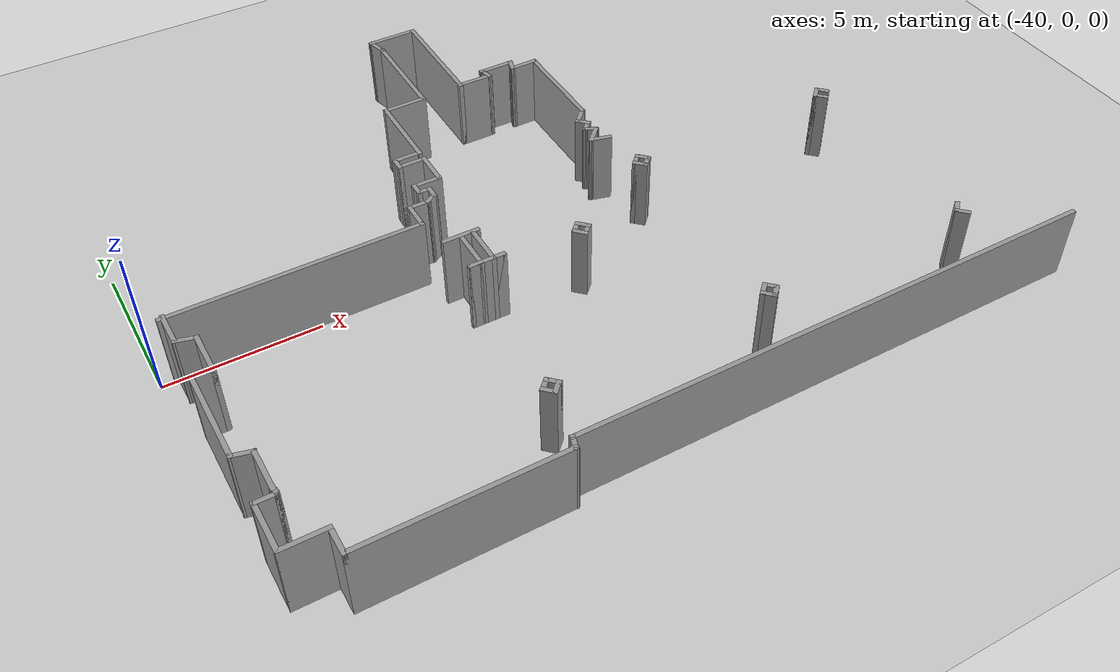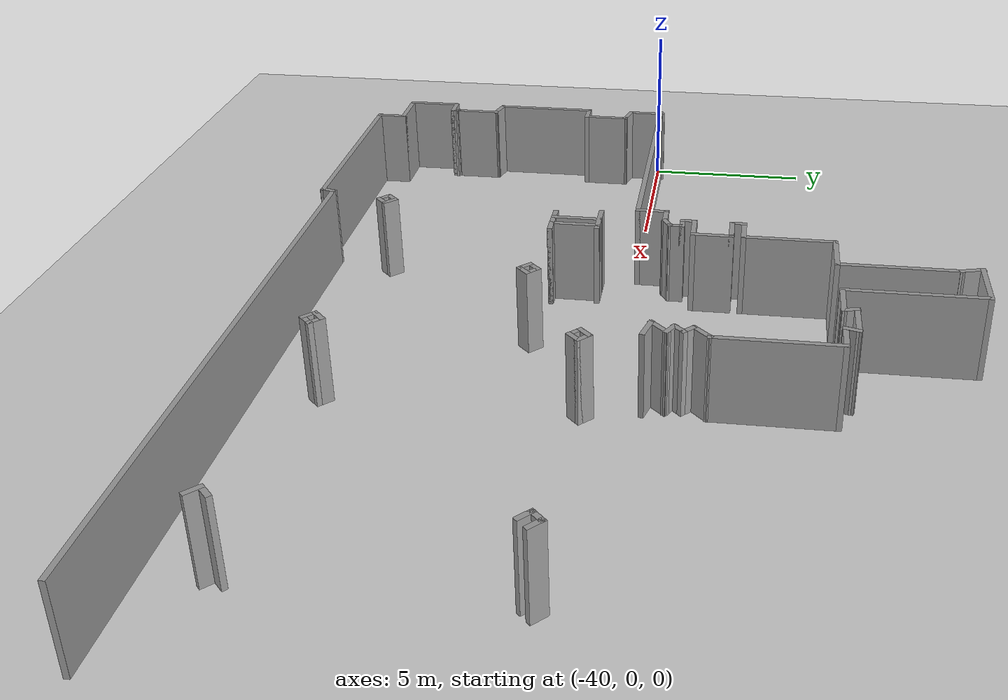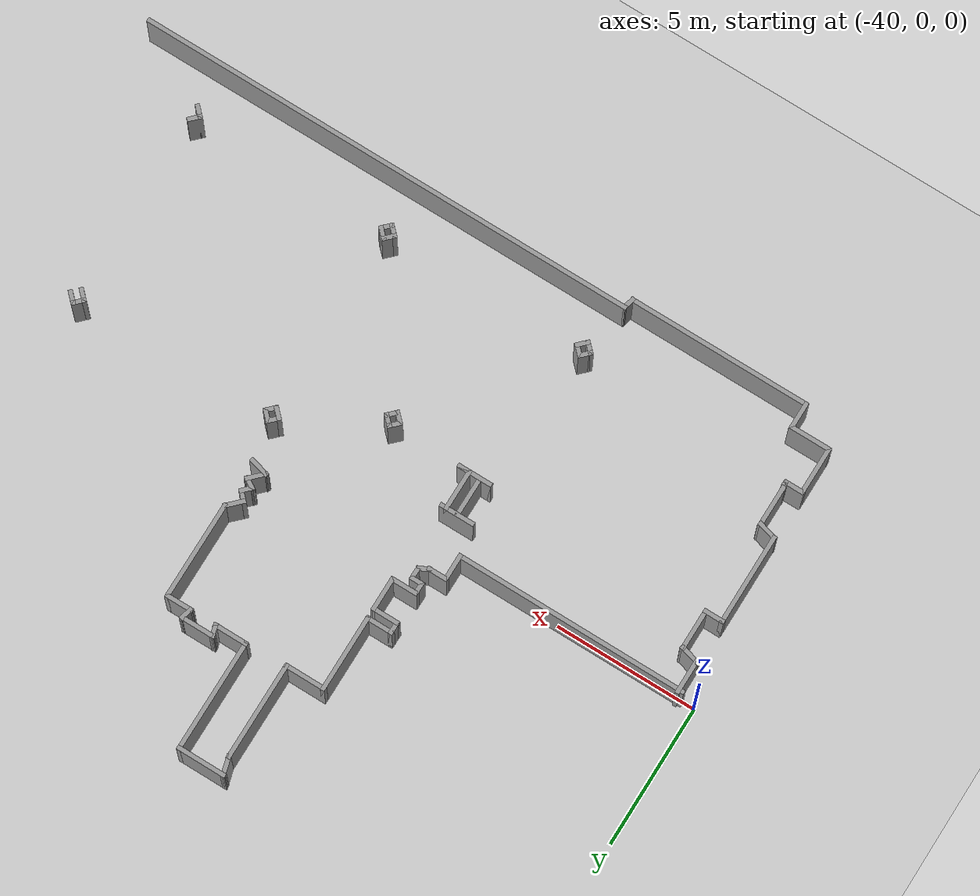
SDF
<sdf version="1.6">
 <world name="default">
  <model name="ground_plane">
   <static>1</static>
   <link name="link">
    <collision name="collision">
     <geometry><plane><normal>0 0 1</normal><size>100 100</size></plane></geometry>
     <surface><friction><ode><mu>100</mu><mu2>50</mu2></ode></friction></surface>
    </collision>
    <visual name="visual">
     <cast_shadows>0</cast_shadows>
     <geometry><plane><normal>0 0 1</normal><size>100 100</size></plane></geometry>
     <material>
      <script><uri>file://media/materials/scripts/gazebo.material</uri><name>Gazebo/Grey</name></script>
     </material>
    </visual>
   </link>
  </model>
  <model name="301_1f_2">
   <pose>0.932725 -1.08367 0 0 -0 0</pose>
   <link name="Wall_10">
    <collision name="Wall_10_Collision">
     <geometry><box><size>0.75 0.15 2.5</size></box></geometry>
     <pose>0 0 1.25 0 -0 0</pose>
    </collision>
    <visual name="Wall_10_Visual">
     <pose>0 0 1.25 0 -0 0</pose>
     <geometry><box><size>0.75 0.15 2.5</size></box></geometry>
     <material>
      <script><uri>file://media/materials/scripts/gazebo.material</uri><name>Gazebo/Grey</name></script>
      <ambient>1 1 1 1</ambient>
     </material>
     <meta><layer>0</layer></meta>
    </visual>
    <pose>-40.0631 -4.54955 0 0 -0 -0.261799</pose>
   </link>
   <link name="Wall_100">
    <collision name="Wall_100_Collision">
     <geometry><box><size>0.5 0.15 2.5</size></box></geometry>
     <pose>0 0 1.25 0 -0 0</pose>
    </collision>
    <visual name="Wall_100_Visual">
     <pose>0 0 1.25 0 -0 0</pose>
     <geometry><box><size>0.5 0.15 2.5</size></box></geometry>
     <material>
      <script><uri>file://media/materials/scripts/gazebo.material</uri><name>Gazebo/Grey</name></script>
      <ambient>1 1 1 1</ambient>
     </material>
     <meta><layer>0</layer></meta>
    </visual>
    <pose>-26.0943 7.19008 0 0 -0 1.309</pose>
   </link>
   <link name="Wall_101">
    <collision name="Wall_101_Collision">
     <geometry><box><size>1.25 0.15 2.5</size></box></geometry>
     <pose>0 0 1.25 0 -0 0</pose>
    </collision>
    <visual name="Wall_101_Visual">
     <pose>0 0 1.25 0 -0 0</pose>
     <geometry><box><size>1.25 0.15 2.5</size></box></geometry>
     <material>
      <script><uri>file://media/materials/scripts/gazebo.material</uri><name>Gazebo/Grey</name></script>
      <ambient>1 1 1 1</ambient>
     </material>
     <meta><layer>0</layer></meta>
    </visual>
    <pose>-26.599 7.35912 0 0 -0 3.14159</pose>
   </link>
   <link name="Wall_102">
    <collision name="Wall_102_Collision">
     <geometry><box><size>0.5 0.15 2.5</size></box></geometry>
     <pose>0 0 1.25 0 -0 0</pose>
    </collision>
    <visual name="Wall_102_Visual">
     <pose>0 0 1.25 0 -0 0</pose>
     <geometry><box><size>0.5 0.15 2.5</size></box></geometry>
     <material>
      <script><uri>file://media/materials/scripts/gazebo.material</uri><name>Gazebo/Grey</name></script>
      <ambient>1 1 1 1</ambient>
     </material>
     <meta><layer>0</layer></meta>
    </visual>
    <pose>-27.1037 7.19008 0 0 -0 -1.309</pose>
   </link>
   <link name="Wall_103">
    <collision name="Wall_103_Collision">
     <geometry><box><size>1.25 0.15 2.5</size></box></geometry>
     <pose>0 0 1.25 0 -0 0</pose>
    </collision>
    <visual name="Wall_103_Visual">
     <pose>0 0 1.25 0 -0 0</pose>
     <geometry><box><size>1.25 0.15 2.5</size></box></geometry>
     <material>
      <script><uri>file://media/materials/scripts/gazebo.material</uri><name>Gazebo/Grey</name></script>
      <ambient>1 1 1 1</ambient>
     </material>
     <meta><layer>0</layer></meta>
    </visual>
    <pose>-27.6084 7.02104 0 0 -0 3.14159</pose>
   </link>
   <link name="Wall_104">
    <collision name="Wall_104_Collision">
     <geometry><box><size>4 0.15 2.5</size></box></geometry>
     <pose>0 0 1.25 0 -0 0</pose>
    </collision>
    <visual name="Wall_104_Visual">
     <pose>0 0 1.25 0 -0 0</pose>
     <geometry><box><size>4 0.15 2.5</size></box></geometry>
     <material>
      <script><uri>file://media/materials/scripts/gazebo.material</uri><name>Gazebo/Grey</name></script>
      <ambient>1 1 1 1</ambient>
     </material>
     <meta><layer>0</layer></meta>
    </visual>
    <pose>-28.1584 8.94604 0 0 -0 1.5708</pose>
   </link>
   <link name="Wall_105">
    <collision name="Wall_105_Collision">
     <geometry><box><size>1.75 0.15 2.5</size></box></geometry>
     <pose>0 0 1.25 0 -0 0</pose>
    </collision>
    <visual name="Wall_105_Visual">
     <pose>0 0 1.25 0 -0 0</pose>
     <geometry><box><size>1.75 0.15 2.5</size></box></geometry>
     <material>
      <script><uri>file://media/materials/scripts/gazebo.material</uri><name>Gazebo/Grey</name></script>
      <ambient>1 1 1 1</ambient>
     </material>
     <meta><layer>0</layer></meta>
    </visual>
    <pose>-28.9584 10.871 0 0 -0 3.14159</pose>
   </link>
   <link name="Wall_106">
    <collision name="Wall_106_Collision">
     <geometry><box><size>0.75 0.15 2.5</size></box></geometry>
     <pose>0 0 1.25 0 -0 0</pose>
    </collision>
    <visual name="Wall_106_Visual">
     <pose>0 0 1.25 0 -0 0</pose>
     <geometry><box><size>0.75 0.15 2.5</size></box></geometry>
     <material>
      <script><uri>file://media/materials/scripts/gazebo.material</uri><name>Gazebo/Grey</name></script>
      <ambient>1 1 1 1</ambient>
     </material>
     <meta><layer>0</layer></meta>
    </visual>
    <pose>-29.6807 10.5813 0 0 -0 -1.309</pose>
   </link>
   <link name="Wall_107">
    <collision name="Wall_107_Collision">
     <geometry><box><size>3.5 0.15 2.5</size></box></geometry>
     <pose>0 0 1.25 0 -0 0</pose>
    </collision>
    <visual name="Wall_107_Visual">
     <pose>0 0 1.25 0 -0 0</pose>
     <geometry><box><size>3.5 0.15 2.5</size></box></geometry>
     <material>
      <script><uri>file://media/materials/scripts/gazebo.material</uri><name>Gazebo/Grey</name></script>
      <ambient>1 1 1 1</ambient>
     </material>
     <meta><layer>0</layer></meta>
    </visual>
    <pose>-29.6031 8.61649 0 0 -0 -1.5708</pose>
   </link>
   <link name="Wall_108">
    <collision name="Wall_108_Collision">
     <geometry><box><size>1.5 0.15 2.5</size></box></geometry>
     <pose>0 0 1.25 0 -0 0</pose>
    </collision>
    <visual name="Wall_108_Visual">
     <pose>0 0 1.25 0 -0 0</pose>
     <geometry><box><size>1.5 0.15 2.5</size></box></geometry>
     <material>
      <script><uri>file://media/materials/scripts/gazebo.material</uri><name>Gazebo/Grey</name></script>
      <ambient>1 1 1 1</ambient>
     </material>
     <meta><layer>0</layer></meta>
    </visual>
    <pose>-30.2781 6.94149 0 0 -0 3.14159</pose>
   </link>
   <link name="Wall_109">
    <collision name="Wall_109_Collision">
     <geometry><box><size>2.75 0.15 2.5</size></box></geometry>
     <pose>0 0 1.25 0 -0 0</pose>
    </collision>
    <visual name="Wall_109_Visual">
     <pose>0 0 1.25 0 -0 0</pose>
     <geometry><box><size>2.75 0.15 2.5</size></box></geometry>
     <material>
      <script><uri>file://media/materials/scripts/gazebo.material</uri><name>Gazebo/Grey</name></script>
      <ambient>1 1 1 1</ambient>
     </material>
     <meta><layer>0</layer></meta>
    </visual>
    <pose>-30.9531 5.64149 0 0 -0 -1.5708</pose>
   </link>
   <link name="Wall_11">
    <collision name="Wall_11_Collision">
     <geometry><box><size>1.5 0.15 2.5</size></box></geometry>
     <pose>0 0 1.25 0 -0 0</pose>
    </collision>
    <visual name="Wall_11_Visual">
     <pose>0 0 1.25 0 -0 0</pose>
     <geometry><box><size>1.5 0.15 2.5</size></box></geometry>
     <material>
      <script><uri>file://media/materials/scripts/gazebo.material</uri><name>Gazebo/Grey</name></script>
      <ambient>1 1 1 1</ambient>
     </material>
     <meta><layer>0</layer></meta>
    </visual>
    <pose>-39.7734 -5.30219 0 0 -0 -1.5708</pose>
   </link>
   <link name="Wall_110">
    <collision name="Wall_110_Collision">
     <geometry><box><size>1 0.15 2.5</size></box></geometry>
     <pose>0 0 1.25 0 -0 0</pose>
    </collision>
    <visual name="Wall_110_Visual">
     <pose>0 0 1.25 0 -0 0</pose>
     <geometry><box><size>1 0.15 2.5</size></box></geometry>
     <material>
      <script><uri>file://media/materials/scripts/gazebo.material</uri><name>Gazebo/Grey</name></script>
      <ambient>1 1 1 1</ambient>
     </material>
     <meta><layer>0</layer></meta>
    </visual>
    <pose>-31.3781 4.34149 0 0 -0 3.14159</pose>
   </link>
   <link name="Wall_111">
    <collision name="Wall_111_Collision">
     <geometry><box><size>0.5 0.15 2.5</size></box></geometry>
     <pose>0 0 1.25 0 -0 0</pose>
    </collision>
    <visual name="Wall_111_Visual">
     <pose>0 0 1.25 0 -0 0</pose>
     <geometry><box><size>0.5 0.15 2.5</size></box></geometry>
     <material>
      <script><uri>file://media/materials/scripts/gazebo.material</uri><name>Gazebo/Grey</name></script>
      <ambient>1 1 1 1</ambient>
     </material>
     <meta><layer>0</layer></meta>
    </visual>
    <pose>-31.8031 4.16649 0 0 -0 -1.5708</pose>
   </link>
   <link name="Wall_112">
    <collision name="Wall_112_Collision">
     <geometry><box><size>1 0.15 2.5</size></box></geometry>
     <pose>0 0 1.25 0 -0 0</pose>
    </collision>
    <visual name="Wall_112_Visual">
     <pose>0 0 1.25 0 -0 0</pose>
     <geometry><box><size>1 0.15 2.5</size></box></geometry>
     <material>
      <script><uri>file://media/materials/scripts/gazebo.material</uri><name>Gazebo/Grey</name></script>
      <ambient>1 1 1 1</ambient>
     </material>
     <meta><layer>0</layer></meta>
    </visual>
    <pose>-31.3781 3.99149 0 0 -0 0</pose>
   </link>
   <link name="Wall_113">
    <collision name="Wall_113_Collision">
     <geometry><box><size>1.25 0.15 2.5</size></box></geometry>
     <pose>0 0 1.25 0 -0 0</pose>
    </collision>
    <visual name="Wall_113_Visual">
     <pose>0 0 1.25 0 -0 0</pose>
     <geometry><box><size>1.25 0.15 2.5</size></box></geometry>
     <material>
      <script><uri>file://media/materials/scripts/gazebo.material</uri><name>Gazebo/Grey</name></script>
      <ambient>1 1 1 1</ambient>
     </material>
     <meta><layer>0</layer></meta>
    </visual>
    <pose>-30.9531 3.44149 0 0 -0 -1.5708</pose>
   </link>
   <link name="Wall_114">
    <collision name="Wall_114_Collision">
     <geometry><box><size>1 0.15 2.5</size></box></geometry>
     <pose>0 0 1.25 0 -0 0</pose>
    </collision>
    <visual name="Wall_114_Visual">
     <pose>0 0 1.25 0 -0 0</pose>
     <geometry><box><size>1 0.15 2.5</size></box></geometry>
     <material>
      <script><uri>file://media/materials/scripts/gazebo.material</uri><name>Gazebo/Grey</name></script>
      <ambient>1 1 1 1</ambient>
     </material>
     <meta><layer>0</layer></meta>
    </visual>
    <pose>-31.3781 2.89149 0 0 -0 3.14159</pose>
   </link>
   <link name="Wall_115">
    <collision name="Wall_115_Collision">
     <geometry><box><size>0.5 0.15 2.5</size></box></geometry>
     <pose>0 0 1.25 0 -0 0</pose>
    </collision>
    <visual name="Wall_115_Visual">
     <pose>0 0 1.25 0 -0 0</pose>
     <geometry><box><size>0.5 0.15 2.5</size></box></geometry>
     <material>
      <script><uri>file://media/materials/scripts/gazebo.material</uri><name>Gazebo/Grey</name></script>
      <ambient>1 1 1 1</ambient>
     </material>
     <meta><layer>0</layer></meta>
    </visual>
    <pose>-31.8031 2.71649 0 0 -0 -1.5708</pose>
   </link>
   <link name="Wall_116">
    <collision name="Wall_116_Collision">
     <geometry><box><size>0.5 0.15 2.5</size></box></geometry>
     <pose>0 0 1.25 0 -0 0</pose>
    </collision>
    <visual name="Wall_116_Visual">
     <pose>0 0 1.25 0 -0 0</pose>
     <geometry><box><size>0.5 0.15 2.5</size></box></geometry>
     <material>
      <script><uri>file://media/materials/scripts/gazebo.material</uri><name>Gazebo/Grey</name></script>
      <ambient>1 1 1 1</ambient>
     </material>
     <meta><layer>0</layer></meta>
    </visual>
    <pose>-31.6281 2.54149 0 0 -0 0</pose>
   </link>
   <link name="Wall_117">
    <collision name="Wall_117_Collision">
     <geometry><box><size>0.5 0.15 2.5</size></box></geometry>
     <pose>0 0 1.25 0 -0 0</pose>
    </collision>
    <visual name="Wall_117_Visual">
     <pose>0 0 1.25 0 -0 0</pose>
     <geometry><box><size>0.5 0.15 2.5</size></box></geometry>
     <material>
      <script><uri>file://media/materials/scripts/gazebo.material</uri><name>Gazebo/Grey</name></script>
      <ambient>1 1 1 1</ambient>
     </material>
     <meta><layer>0</layer></meta>
    </visual>
    <pose>-31.4531 2.36649 0 0 -0 -1.5708</pose>
   </link>
   <link name="Wall_118">
    <collision name="Wall_118_Collision">
     <geometry><box><size>0.5 0.15 2.5</size></box></geometry>
     <pose>0 0 1.25 0 -0 0</pose>
    </collision>
    <visual name="Wall_118_Visual">
     <pose>0 0 1.25 0 -0 0</pose>
     <geometry><box><size>0.5 0.15 2.5</size></box></geometry>
     <material>
      <script><uri>file://media/materials/scripts/gazebo.material</uri><name>Gazebo/Grey</name></script>
      <ambient>1 1 1 1</ambient>
     </material>
     <meta><layer>0</layer></meta>
    </visual>
    <pose>-31.6047 2.10399 0 0 -0 -2.61799</pose>
   </link>
   <link name="Wall_119">
    <collision name="Wall_119_Collision">
     <geometry><box><size>0.75 0.15 2.5</size></box></geometry>
     <pose>0 0 1.25 0 -0 0</pose>
    </collision>
    <visual name="Wall_119_Visual">
     <pose>0 0 1.25 0 -0 0</pose>
     <geometry><box><size>0.75 0.15 2.5</size></box></geometry>
     <material>
      <script><uri>file://media/materials/scripts/gazebo.material</uri><name>Gazebo/Grey</name></script>
      <ambient>1 1 1 1</ambient>
     </material>
     <meta><layer>0</layer></meta>
    </visual>
    <pose>-32.0562 2.01649 0 0 -0 3.14159</pose>
   </link>
   <link name="Wall_12">
    <collision name="Wall_12_Collision">
     <geometry><box><size>0.25 0.15 2.5</size></box></geometry>
     <pose>0 0 1.25 0 -0 0</pose>
    </collision>
    <visual name="Wall_12_Visual">
     <pose>0 0 1.25 0 -0 0</pose>
     <geometry><box><size>0.25 0.15 2.5</size></box></geometry>
     <material>
      <script><uri>file://media/materials/scripts/gazebo.material</uri><name>Gazebo/Grey</name></script>
      <ambient>1 1 1 1</ambient>
     </material>
     <meta><layer>0</layer></meta>
    </visual>
    <pose>-39.7604 -6.02549 0 0 -0 -1.309</pose>
   </link>
   <link name="Wall_122">
    <collision name="Wall_122_Collision">
     <geometry><box><size>1 0.15 2.5</size></box></geometry>
     <pose>0 0 1.25 0 -0 0</pose>
    </collision>
    <visual name="Wall_122_Visual">
     <pose>0 0 1.25 0 -0 0</pose>
     <geometry><box><size>1 0.15 2.5</size></box></geometry>
     <material>
      <script><uri>file://media/materials/scripts/gazebo.material</uri><name>Gazebo/Grey</name></script>
      <ambient>1 1 1 1</ambient>
     </material>
     <meta><layer>0</layer></meta>
    </visual>
    <pose>-32.3562 1.59149 0 0 -0 -1.5708</pose>
   </link>
   <link name="Wall_123">
    <collision name="Wall_123_Collision">
     <geometry><box><size>8.25 0.15 2.5</size></box></geometry>
     <pose>0 0 1.25 0 -0 0</pose>
    </collision>
    <visual name="Wall_123_Visual">
     <pose>0 0 1.25 0 -0 0</pose>
     <geometry><box><size>8.25 0.15 2.5</size></box></geometry>
     <material>
      <script><uri>file://media/materials/scripts/gazebo.material</uri><name>Gazebo/Grey</name></script>
      <ambient>1 1 1 1</ambient>
     </material>
     <meta><layer>0</layer></meta>
    </visual>
    <pose>-36.4062 1.16649 0 0 -0 3.14159</pose>
   </link>
   <link name="Wall_13">
    <collision name="Wall_13_Collision">
     <geometry><box><size>0.25 0.15 2.5</size></box></geometry>
     <pose>0 0 1.25 0 -0 0</pose>
    </collision>
    <visual name="Wall_13_Visual">
     <pose>0 0 1.25 0 -0 0</pose>
     <geometry><box><size>0.25 0.15 2.5</size></box></geometry>
     <material>
      <script><uri>file://media/materials/scripts/gazebo.material</uri><name>Gazebo/Grey</name></script>
      <ambient>1 1 1 1</ambient>
     </material>
     <meta><layer>0</layer></meta>
    </visual>
    <pose>-39.7475 -6.12379 0 0 -0 -1.5708</pose>
   </link>
   <link name="Wall_14">
    <collision name="Wall_14_Collision">
     <geometry><box><size>0.75 0.15 2.5</size></box></geometry>
     <pose>0 0 1.25 0 -0 0</pose>
    </collision>
    <visual name="Wall_14_Visual">
     <pose>0 0 1.25 0 -0 0</pose>
     <geometry><box><size>0.75 0.15 2.5</size></box></geometry>
     <material>
      <script><uri>file://media/materials/scripts/gazebo.material</uri><name>Gazebo/Grey</name></script>
      <ambient>1 1 1 1</ambient>
     </material>
     <meta><layer>0</layer></meta>
    </visual>
    <pose>-40.0475 -6.17379 0 0 -0 3.14159</pose>
   </link>
   <link name="Wall_15">
    <collision name="Wall_15_Collision">
     <geometry><box><size>1.75 0.15 2.5</size></box></geometry>
     <pose>0 0 1.25 0 -0 0</pose>
    </collision>
    <visual name="Wall_15_Visual">
     <pose>0 0 1.25 0 -0 0</pose>
     <geometry><box><size>1.75 0.15 2.5</size></box></geometry>
     <material>
      <script><uri>file://media/materials/scripts/gazebo.material</uri><name>Gazebo/Grey</name></script>
      <ambient>1 1 1 1</ambient>
     </material>
     <meta><layer>0</layer></meta>
    </visual>
    <pose>-40.3475 -6.97379 0 0 -0 -1.5708</pose>
   </link>
   <link name="Wall_16">
    <collision name="Wall_16_Collision">
     <geometry><box><size>1.5 0.15 2.5</size></box></geometry>
     <pose>0 0 1.25 0 -0 0</pose>
    </collision>
    <visual name="Wall_16_Visual">
     <pose>0 0 1.25 0 -0 0</pose>
     <geometry><box><size>1.5 0.15 2.5</size></box></geometry>
     <material>
      <script><uri>file://media/materials/scripts/gazebo.material</uri><name>Gazebo/Grey</name></script>
      <ambient>1 1 1 1</ambient>
     </material>
     <meta><layer>0</layer></meta>
    </visual>
    <pose>-39.6725 -7.77379 0 0 -0 0</pose>
   </link>
   <link name="Wall_17">
    <collision name="Wall_17_Collision">
     <geometry><box><size>1 0.15 2.5</size></box></geometry>
     <pose>0 0 1.25 0 -0 0</pose>
    </collision>
    <visual name="Wall_17_Visual">
     <pose>0 0 1.25 0 -0 0</pose>
     <geometry><box><size>1 0.15 2.5</size></box></geometry>
     <material>
      <script><uri>file://media/materials/scripts/gazebo.material</uri><name>Gazebo/Grey</name></script>
      <ambient>1 1 1 1</ambient>
     </material>
     <meta><layer>0</layer></meta>
    </visual>
    <pose>-38.9975 -8.19879 0 0 -0 -1.5708</pose>
   </link>
   <link name="Wall_179">
    <collision name="Wall_179_Collision">
     <geometry><box><size>0.5 0.15 2.5</size></box></geometry>
     <pose>0 0 1.25 0 -0 0</pose>
    </collision>
    <visual name="Wall_179_Visual">
     <pose>0 0 1.25 0 -0 0</pose>
     <geometry><box><size>0.5 0.15 2.5</size></box></geometry>
     <material>
      <script><uri>file://media/materials/scripts/gazebo.material</uri><name>Gazebo/Grey</name></script>
      <ambient>1 1 1 1</ambient>
     </material>
     <meta><layer>0</layer></meta>
    </visual>
    <pose>-17.9208 0.580185 0 0 -0 0.785398</pose>
   </link>
   <link name="Wall_18">
    <collision name="Wall_18_Collision">
     <geometry><box><size>6.5 0.15 2.5</size></box></geometry>
     <pose>0 0 1.25 0 -0 0</pose>
    </collision>
    <visual name="Wall_18_Visual">
     <pose>0 0 1.25 0 -0 0</pose>
     <geometry><box><size>6.5 0.15 2.5</size></box></geometry>
     <material>
      <script><uri>file://media/materials/scripts/gazebo.material</uri><name>Gazebo/Grey</name></script>
      <ambient>1 1 1 1</ambient>
     </material>
     <meta><layer>0</layer></meta>
    </visual>
    <pose>-35.8225 -8.62379 0 0 -0 0</pose>
   </link>
   <link name="Wall_180">
    <collision name="Wall_180_Collision">
     <geometry><box><size>0.5 0.15 2.5</size></box></geometry>
     <pose>0 0 1.25 0 -0 0</pose>
    </collision>
    <visual name="Wall_180_Visual">
     <pose>0 0 1.25 0 -0 0</pose>
     <geometry><box><size>0.5 0.15 2.5</size></box></geometry>
     <material>
      <script><uri>file://media/materials/scripts/gazebo.material</uri><name>Gazebo/Grey</name></script>
      <ambient>1 1 1 1</ambient>
     </material>
     <meta><layer>0</layer></meta>
    </visual>
    <pose>-17.6733 0.580185 0 0 -0 -0.785398</pose>
   </link>
   <link name="Wall_182">
    <collision name="Wall_182_Collision">
     <geometry><box><size>0.5 0.15 2.5</size></box></geometry>
     <pose>0 0 1.25 0 -0 0</pose>
    </collision>
    <visual name="Wall_182_Visual">
     <pose>0 0 1.25 0 -0 0</pose>
     <geometry><box><size>0.5 0.15 2.5</size></box></geometry>
     <material>
      <script><uri>file://media/materials/scripts/gazebo.material</uri><name>Gazebo/Grey</name></script>
      <ambient>1 1 1 1</ambient>
     </material>
     <meta><layer>0</layer></meta>
    </visual>
    <pose>-17.9208 0.332697 0 0 -0 2.35619</pose>
   </link>
   <link name="Wall_184">
    <collision name="Wall_184_Collision">
     <geometry><box><size>0.5 0.15 2.5</size></box></geometry>
     <pose>0 0 1.25 0 -0 0</pose>
    </collision>
    <visual name="Wall_184_Visual">
     <pose>0 0 1.25 0 -0 0</pose>
     <geometry><box><size>0.5 0.15 2.5</size></box></geometry>
     <material>
      <script><uri>file://media/materials/scripts/gazebo.material</uri><name>Gazebo/Grey</name></script>
      <ambient>1 1 1 1</ambient>
     </material>
     <meta><layer>0</layer></meta>
    </visual>
    <pose>-17.8535 -6.35033 0 0 -0 0.785398</pose>
   </link>
   <link name="Wall_187">
    <collision name="Wall_187_Collision">
     <geometry><box><size>0.5 0.15 2.5</size></box></geometry>
     <pose>0 0 1.25 0 -0 0</pose>
    </collision>
    <visual name="Wall_187_Visual">
     <pose>0 0 1.25 0 -0 0</pose>
     <geometry><box><size>0.5 0.15 2.5</size></box></geometry>
     <material>
      <script><uri>file://media/materials/scripts/gazebo.material</uri><name>Gazebo/Grey</name></script>
      <ambient>1 1 1 1</ambient>
     </material>
     <meta><layer>0</layer></meta>
    </visual>
    <pose>-17.8535 -6.59782 0 0 -0 2.35619</pose>
   </link>
   <link name="Wall_189">
    <collision name="Wall_189_Collision">
     <geometry><box><size>0.5 0.15 2.5</size></box></geometry>
     <pose>0 0 1.25 0 -0 0</pose>
    </collision>
    <visual name="Wall_189_Visual">
     <pose>0 0 1.25 0 -0 0</pose>
     <geometry><box><size>0.5 0.15 2.5</size></box></geometry>
     <material>
      <script><uri>file://media/materials/scripts/gazebo.material</uri><name>Gazebo/Grey</name></script>
      <ambient>1 1 1 1</ambient>
     </material>
     <meta><layer>0</layer></meta>
    </visual>
    <pose>-25.1204 0.557756 0 0 -0 0.785398</pose>
   </link>
   <link name="Wall_19">
    <collision name="Wall_19_Collision">
     <geometry><box><size>0.5 0.15 2.5</size></box></geometry>
     <pose>0 0 1.25 0 -0 0</pose>
    </collision>
    <visual name="Wall_19_Visual">
     <pose>0 0 1.25 0 -0 0</pose>
     <geometry><box><size>0.5 0.15 2.5</size></box></geometry>
     <material>
      <script><uri>file://media/materials/scripts/gazebo.material</uri><name>Gazebo/Grey</name></script>
      <ambient>1 1 1 1</ambient>
     </material>
     <meta><layer>0</layer></meta>
    </visual>
    <pose>-32.6022 -8.45475 0 0 -0 1.309</pose>
   </link>
   <link name="Wall_190">
    <collision name="Wall_190_Collision">
     <geometry><box><size>0.5 0.15 2.5</size></box></geometry>
     <pose>0 0 1.25 0 -0 0</pose>
    </collision>
    <visual name="Wall_190_Visual">
     <pose>0 0 1.25 0 -0 0</pose>
     <geometry><box><size>0.5 0.15 2.5</size></box></geometry>
     <material>
      <script><uri>file://media/materials/scripts/gazebo.material</uri><name>Gazebo/Grey</name></script>
      <ambient>1 1 1 1</ambient>
     </material>
     <meta><layer>0</layer></meta>
    </visual>
    <pose>-24.8729 0.557756 0 0 -0 -0.785398</pose>
   </link>
   <link name="Wall_191">
    <collision name="Wall_191_Collision">
     <geometry><box><size>0.5 0.15 2.5</size></box></geometry>
     <pose>0 0 1.25 0 -0 0</pose>
    </collision>
    <visual name="Wall_191_Visual">
     <pose>0 0 1.25 0 -0 0</pose>
     <geometry><box><size>0.5 0.15 2.5</size></box></geometry>
     <material>
      <script><uri>file://media/materials/scripts/gazebo.material</uri><name>Gazebo/Grey</name></script>
      <ambient>1 1 1 1</ambient>
     </material>
     <meta><layer>0</layer></meta>
    </visual>
    <pose>-24.8729 0.310269 0 0 -0 -2.35619</pose>
   </link>
   <link name="Wall_192">
    <collision name="Wall_192_Collision">
     <geometry><box><size>0.5 0.15 2.5</size></box></geometry>
     <pose>0 0 1.25 0 -0 0</pose>
    </collision>
    <visual name="Wall_192_Visual">
     <pose>0 0 1.25 0 -0 0</pose>
     <geometry><box><size>0.5 0.15 2.5</size></box></geometry>
     <material>
      <script><uri>file://media/materials/scripts/gazebo.material</uri><name>Gazebo/Grey</name></script>
      <ambient>1 1 1 1</ambient>
     </material>
     <meta><layer>0</layer></meta>
    </visual>
    <pose>-25.1204 0.310269 0 0 -0 2.35619</pose>
   </link>
   <link name="Wall_194">
    <collision name="Wall_194_Collision">
     <geometry><box><size>0.5 0.15 2.5</size></box></geometry>
     <pose>0 0 1.25 0 -0 0</pose>
    </collision>
    <visual name="Wall_194_Visual">
     <pose>0 0 1.25 0 -0 0</pose>
     <geometry><box><size>0.5 0.15 2.5</size></box></geometry>
     <material>
      <script><uri>file://media/materials/scripts/gazebo.material</uri><name>Gazebo/Grey</name></script>
      <ambient>1 1 1 1</ambient>
     </material>
     <meta><layer>0</layer></meta>
    </visual>
    <pose>-25.098 -6.30548 0 0 -0 0.785398</pose>
   </link>
   <link name="Wall_195">
    <collision name="Wall_195_Collision">
     <geometry><box><size>0.5 0.15 2.5</size></box></geometry>
     <pose>0 0 1.25 0 -0 0</pose>
    </collision>
    <visual name="Wall_195_Visual">
     <pose>0 0 1.25 0 -0 0</pose>
     <geometry><box><size>0.5 0.15 2.5</size></box></geometry>
     <material>
      <script><uri>file://media/materials/scripts/gazebo.material</uri><name>Gazebo/Grey</name></script>
      <ambient>1 1 1 1</ambient>
     </material>
     <meta><layer>0</layer></meta>
    </visual>
    <pose>-24.8505 -6.30548 0 0 -0 -0.785398</pose>
   </link>
   <link name="Wall_196">
    <collision name="Wall_196_Collision">
     <geometry><box><size>0.5 0.15 2.5</size></box></geometry>
     <pose>0 0 1.25 0 -0 0</pose>
    </collision>
    <visual name="Wall_196_Visual">
     <pose>0 0 1.25 0 -0 0</pose>
     <geometry><box><size>0.5 0.15 2.5</size></box></geometry>
     <material>
      <script><uri>file://media/materials/scripts/gazebo.material</uri><name>Gazebo/Grey</name></script>
      <ambient>1 1 1 1</ambient>
     </material>
     <meta><layer>0</layer></meta>
    </visual>
    <pose>-24.8505 -6.55296 0 0 -0 -2.35619</pose>
   </link>
   <link name="Wall_197">
    <collision name="Wall_197_Collision">
     <geometry><box><size>0.5 0.15 2.5</size></box></geometry>
     <pose>0 0 1.25 0 -0 0</pose>
    </collision>
    <visual name="Wall_197_Visual">
     <pose>0 0 1.25 0 -0 0</pose>
     <geometry><box><size>0.5 0.15 2.5</size></box></geometry>
     <material>
      <script><uri>file://media/materials/scripts/gazebo.material</uri><name>Gazebo/Grey</name></script>
      <ambient>1 1 1 1</ambient>
     </material>
     <meta><layer>0</layer></meta>
    </visual>
    <pose>-25.098 -6.55296 0 0 -0 2.35619</pose>
   </link>
   <link name="Wall_199">
    <collision name="Wall_199_Collision">
     <geometry><box><size>0.5 0.15 2.5</size></box></geometry>
     <pose>0 0 1.25 0 -0 0</pose>
    </collision>
    <visual name="Wall_199_Visual">
     <pose>0 0 1.25 0 -0 0</pose>
     <geometry><box><size>0.5 0.15 2.5</size></box></geometry>
     <material>
      <script><uri>file://media/materials/scripts/gazebo.material</uri><name>Gazebo/Grey</name></script>
      <ambient>1 1 1 1</ambient>
     </material>
     <meta><layer>0</layer></meta>
    </visual>
    <pose>-32.2977 -6.35033 0 0 -0 0.785398</pose>
   </link>
   <link name="Wall_200">
    <collision name="Wall_200_Collision">
     <geometry><box><size>0.5 0.15 2.5</size></box></geometry>
     <pose>0 0 1.25 0 -0 0</pose>
    </collision>
    <visual name="Wall_200_Visual">
     <pose>0 0 1.25 0 -0 0</pose>
     <geometry><box><size>0.5 0.15 2.5</size></box></geometry>
     <material>
      <script><uri>file://media/materials/scripts/gazebo.material</uri><name>Gazebo/Grey</name></script>
      <ambient>1 1 1 1</ambient>
     </material>
     <meta><layer>0</layer></meta>
    </visual>
    <pose>-32.0502 -6.35033 0 0 -0 -0.785398</pose>
   </link>
   <link name="Wall_201">
    <collision name="Wall_201_Collision">
     <geometry><box><size>0.5 0.15 2.5</size></box></geometry>
     <pose>0 0 1.25 0 -0 0</pose>
    </collision>
    <visual name="Wall_201_Visual">
     <pose>0 0 1.25 0 -0 0</pose>
     <geometry><box><size>0.5 0.15 2.5</size></box></geometry>
     <material>
      <script><uri>file://media/materials/scripts/gazebo.material</uri><name>Gazebo/Grey</name></script>
      <ambient>1 1 1 1</ambient>
     </material>
     <meta><layer>0</layer></meta>
    </visual>
    <pose>-32.0502 -6.59782 0 0 -0 -2.35619</pose>
   </link>
   <link name="Wall_202">
    <collision name="Wall_202_Collision">
     <geometry><box><size>0.5 0.15 2.5</size></box></geometry>
     <pose>0 0 1.25 0 -0 0</pose>
    </collision>
    <visual name="Wall_202_Visual">
     <pose>0 0 1.25 0 -0 0</pose>
     <geometry><box><size>0.5 0.15 2.5</size></box></geometry>
     <material>
      <script><uri>file://media/materials/scripts/gazebo.material</uri><name>Gazebo/Grey</name></script>
      <ambient>1 1 1 1</ambient>
     </material>
     <meta><layer>0</layer></meta>
    </visual>
    <pose>-32.2977 -6.59782 0 0 -0 2.35619</pose>
   </link>
   <link name="Wall_204">
    <collision name="Wall_204_Collision">
     <geometry><box><size>0.5 0.15 2.5</size></box></geometry>
     <pose>0 0 1.25 0 -0 0</pose>
    </collision>
    <visual name="Wall_204_Visual">
     <pose>0 0 1.25 0 -0 0</pose>
     <geometry><box><size>0.5 0.15 2.5</size></box></geometry>
     <material>
      <script><uri>file://media/materials/scripts/gazebo.material</uri><name>Gazebo/Grey</name></script>
      <ambient>1 1 1 1</ambient>
     </material>
     <meta><layer>0</layer></meta>
    </visual>
    <pose>-28.4175 -1.30384 0 0 -0 0.785398</pose>
   </link>
   <link name="Wall_205">
    <collision name="Wall_205_Collision">
     <geometry><box><size>0.5 0.15 2.5</size></box></geometry>
     <pose>0 0 1.25 0 -0 0</pose>
    </collision>
    <visual name="Wall_205_Visual">
     <pose>0 0 1.25 0 -0 0</pose>
     <geometry><box><size>0.5 0.15 2.5</size></box></geometry>
     <material>
      <script><uri>file://media/materials/scripts/gazebo.material</uri><name>Gazebo/Grey</name></script>
      <ambient>1 1 1 1</ambient>
     </material>
     <meta><layer>0</layer></meta>
    </visual>
    <pose>-28.17 -1.30384 0 0 -0 -0.785398</pose>
   </link>
   <link name="Wall_206">
    <collision name="Wall_206_Collision">
     <geometry><box><size>0.5 0.15 2.5</size></box></geometry>
     <pose>0 0 1.25 0 -0 0</pose>
    </collision>
    <visual name="Wall_206_Visual">
     <pose>0 0 1.25 0 -0 0</pose>
     <geometry><box><size>0.5 0.15 2.5</size></box></geometry>
     <material>
      <script><uri>file://media/materials/scripts/gazebo.material</uri><name>Gazebo/Grey</name></script>
      <ambient>1 1 1 1</ambient>
     </material>
     <meta><layer>0</layer></meta>
    </visual>
    <pose>-28.17 -1.55133 0 0 -0 -2.35619</pose>
   </link>
   <link name="Wall_207">
    <collision name="Wall_207_Collision">
     <geometry><box><size>0.5 0.15 2.5</size></box></geometry>
     <pose>0 0 1.25 0 -0 0</pose>
    </collision>
    <visual name="Wall_207_Visual">
     <pose>0 0 1.25 0 -0 0</pose>
     <geometry><box><size>0.5 0.15 2.5</size></box></geometry>
     <material>
      <script><uri>file://media/materials/scripts/gazebo.material</uri><name>Gazebo/Grey</name></script>
      <ambient>1 1 1 1</ambient>
     </material>
     <meta><layer>0</layer></meta>
    </visual>
    <pose>-28.4175 -1.55133 0 0 -0 2.35619</pose>
   </link>
   <link name="Wall_209">
    <collision name="Wall_209_Collision">
     <geometry><box><size>1.25 0.15 2.5</size></box></geometry>
     <pose>0 0 1.25 0 -0 0</pose>
    </collision>
    <visual name="Wall_209_Visual">
     <pose>0 0 1.25 0 -0 0</pose>
     <geometry><box><size>1.25 0.15 2.5</size></box></geometry>
     <material>
      <script><uri>file://media/materials/scripts/gazebo.material</uri><name>Gazebo/Grey</name></script>
      <ambient>1 1 1 1</ambient>
     </material>
     <meta><layer>0</layer></meta>
    </visual>
    <pose>-31.5798 0.097579 0 0 -0 0</pose>
   </link>
   <link name="Wall_211">
    <collision name="Wall_211_Collision">
     <geometry><box><size>1.5 0.15 2.5</size></box></geometry>
     <pose>0 0 1.25 0 -0 0</pose>
    </collision>
    <visual name="Wall_211_Visual">
     <pose>0 0 1.25 0 -0 0</pose>
     <geometry><box><size>1.5 0.15 2.5</size></box></geometry>
     <material>
      <script><uri>file://media/materials/scripts/gazebo.material</uri><name>Gazebo/Grey</name></script>
      <ambient>1 1 1 1</ambient>
     </material>
     <meta><layer>0</layer></meta>
    </visual>
    <pose>-31.5915 -0.577421 0 0 -0 -1.5708</pose>
   </link>
   <link name="Wall_212">
    <collision name="Wall_212_Collision">
     <geometry><box><size>0.5 0.15 2.5</size></box></geometry>
     <pose>0 0 1.25 0 -0 0</pose>
    </collision>
    <visual name="Wall_212_Visual">
     <pose>0 0 1.25 0 -0 0</pose>
     <geometry><box><size>0.5 0.15 2.5</size></box></geometry>
     <material>
      <script><uri>file://media/materials/scripts/gazebo.material</uri><name>Gazebo/Grey</name></script>
      <ambient>1 1 1 1</ambient>
     </material>
     <meta><layer>0</layer></meta>
    </visual>
    <pose>-31.7665 -1.25242 0 0 -0 3.14159</pose>
   </link>
   <link name="Wall_213">
    <collision name="Wall_213_Collision">
     <geometry><box><size>1.25 0.15 2.5</size></box></geometry>
     <pose>0 0 1.25 0 -0 0</pose>
    </collision>
    <visual name="Wall_213_Visual">
     <pose>0 0 1.25 0 -0 0</pose>
     <geometry><box><size>1.25 0.15 2.5</size></box></geometry>
     <material>
      <script><uri>file://media/materials/scripts/gazebo.material</uri><name>Gazebo/Grey</name></script>
      <ambient>1 1 1 1</ambient>
     </material>
     <meta><layer>0</layer></meta>
    </visual>
    <pose>-31.3915 -1.25242 0 0 -0 0</pose>
   </link>
   <link name="Wall_214">
    <collision name="Wall_214_Collision">
     <geometry><box><size>0.5 0.15 2.5</size></box></geometry>
     <pose>0 0 1.25 0 -0 0</pose>
    </collision>
    <visual name="Wall_214_Visual">
     <pose>0 0 1.25 0 -0 0</pose>
     <geometry><box><size>0.5 0.15 2.5</size></box></geometry>
     <material>
      <script><uri>file://media/materials/scripts/gazebo.material</uri><name>Gazebo/Grey</name></script>
      <ambient>1 1 1 1</ambient>
     </material>
     <meta><layer>0</layer></meta>
    </visual>
    <pose>-31.0165 -1.25242 0 0 -0 3.14159</pose>
   </link>
   <link name="Wall_215">
    <collision name="Wall_215_Collision">
     <geometry><box><size>1.5 0.15 2.5</size></box></geometry>
     <pose>0 0 1.25 0 -0 0</pose>
    </collision>
    <visual name="Wall_215_Visual">
     <pose>0 0 1.25 0 -0 0</pose>
     <geometry><box><size>1.5 0.15 2.5</size></box></geometry>
     <material>
      <script><uri>file://media/materials/scripts/gazebo.material</uri><name>Gazebo/Grey</name></script>
      <ambient>1 1 1 1</ambient>
     </material>
     <meta><layer>0</layer></meta>
    </visual>
    <pose>-31.1915 -0.577421 0 0 -0 1.5708</pose>
   </link>
   <link name="Wall_23">
    <collision name="Wall_23_Collision">
     <geometry><box><size>17.75 0.15 2.5</size></box></geometry>
     <pose>0 0 1.25 0 -0 0</pose>
    </collision>
    <visual name="Wall_23_Visual">
     <pose>0 0 1.25 0 -0 0</pose>
     <geometry><box><size>17.75 0.15 2.5</size></box></geometry>
     <material>
      <script><uri>file://media/materials/scripts/gazebo.material</uri><name>Gazebo/Grey</name></script>
      <ambient>1 1 1 1</ambient>
     </material>
     <meta><layer>0</layer></meta>
    </visual>
    <pose>-23.7569 -8.28571 0 0 -0 0</pose>
   </link>
   <link name="Wall_5">
    <collision name="Wall_5_Collision">
     <geometry><box><size>1.25 0.15 2.5</size></box></geometry>
     <pose>0 0 1.25 0 -0 0</pose>
    </collision>
    <visual name="Wall_5_Visual">
     <pose>0 0 1.25 0 -0 0</pose>
     <geometry><box><size>1.25 0.15 2.5</size></box></geometry>
     <material>
      <script><uri>file://media/materials/scripts/gazebo.material</uri><name>Gazebo/Grey</name></script>
      <ambient>1 1 1 1</ambient>
     </material>
     <meta><layer>0</layer></meta>
    </visual>
    <pose>-40.3325 0.683389 0 0 -0 -1.5708</pose>
   </link>
   <link name="Wall_6">
    <collision name="Wall_6_Collision">
     <geometry><box><size>0.75 0.15 2.5</size></box></geometry>
     <pose>0 0 1.25 0 -0 0</pose>
    </collision>
    <visual name="Wall_6_Visual">
     <pose>0 0 1.25 0 -0 0</pose>
     <geometry><box><size>0.75 0.15 2.5</size></box></geometry>
     <material>
      <script><uri>file://media/materials/scripts/gazebo.material</uri><name>Gazebo/Grey</name></script>
      <ambient>1 1 1 1</ambient>
     </material>
     <meta><layer>0</layer></meta>
    </visual>
    <pose>-40.0427 0.055744 0 0 -0 -0.261799</pose>
   </link>
   <link name="Wall_7">
    <collision name="Wall_7_Collision">
     <geometry><box><size>1.5 0.15 2.5</size></box></geometry>
     <pose>0 0 1.25 0 -0 0</pose>
    </collision>
    <visual name="Wall_7_Visual">
     <pose>0 0 1.25 0 -0 0</pose>
     <geometry><box><size>1.5 0.15 2.5</size></box></geometry>
     <material>
      <script><uri>file://media/materials/scripts/gazebo.material</uri><name>Gazebo/Grey</name></script>
      <ambient>1 1 1 1</ambient>
     </material>
     <meta><layer>0</layer></meta>
    </visual>
    <pose>-39.7529 -0.696902 0 0 -0 -1.5708</pose>
   </link>
   <link name="Wall_8">
    <collision name="Wall_8_Collision">
     <geometry><box><size>0.75 0.15 2.5</size></box></geometry>
     <pose>0 0 1.25 0 -0 0</pose>
    </collision>
    <visual name="Wall_8_Visual">
     <pose>0 0 1.25 0 -0 0</pose>
     <geometry><box><size>0.75 0.15 2.5</size></box></geometry>
     <material>
      <script><uri>file://media/materials/scripts/gazebo.material</uri><name>Gazebo/Grey</name></script>
      <ambient>1 1 1 1</ambient>
     </material>
     <meta><layer>0</layer></meta>
    </visual>
    <pose>-40.0529 -1.3719 0 0 -0 3.14159</pose>
   </link>
   <link name="Wall_9">
    <collision name="Wall_9_Collision">
     <geometry><box><size>3.25 0.15 2.5</size></box></geometry>
     <pose>0 0 1.25 0 -0 0</pose>
    </collision>
    <visual name="Wall_9_Visual">
     <pose>0 0 1.25 0 -0 0</pose>
     <geometry><box><size>3.25 0.15 2.5</size></box></geometry>
     <material>
      <script><uri>file://media/materials/scripts/gazebo.material</uri><name>Gazebo/Grey</name></script>
      <ambient>1 1 1 1</ambient>
     </material>
     <meta><layer>0</layer></meta>
    </visual>
    <pose>-40.3529 -2.9219 0 0 -0 -1.5708</pose>
   </link>
   <link name="Wall_92">
    <collision name="Wall_92_Collision">
     <geometry><box><size>0.75 0.15 2.5</size></box></geometry>
     <pose>0 0 1.25 0 -0 0</pose>
    </collision>
    <visual name="Wall_92_Visual">
     <pose>0 0 1.25 0 -0 0</pose>
     <geometry><box><size>0.75 0.15 2.5</size></box></geometry>
     <material>
      <script><uri>file://media/materials/scripts/gazebo.material</uri><name>Gazebo/Grey</name></script>
      <ambient>1 1 1 1</ambient>
     </material>
     <meta><layer>0</layer></meta>
    </visual>
    <pose>-25.5452 2.07489 0 0 -0 2.87979</pose>
   </link>
   <link name="Wall_93">
    <collision name="Wall_93_Collision">
     <geometry><box><size>0.75 0.15 2.5</size></box></geometry>
     <pose>0 0 1.25 0 -0 0</pose>
    </collision>
    <visual name="Wall_93_Visual">
     <pose>0 0 1.25 0 -0 0</pose>
     <geometry><box><size>0.75 0.15 2.5</size></box></geometry>
     <material>
      <script><uri>file://media/materials/scripts/gazebo.material</uri><name>Gazebo/Grey</name></script>
      <ambient>1 1 1 1</ambient>
     </material>
     <meta><layer>0</layer></meta>
    </visual>
    <pose>-25.6228 2.36467 0 0 -0 0.785398</pose>
   </link>
   <link name="Wall_94">
    <collision name="Wall_94_Collision">
     <geometry><box><size>0.5 0.15 2.5</size></box></geometry>
     <pose>0 0 1.25 0 -0 0</pose>
    </collision>
    <visual name="Wall_94_Visual">
     <pose>0 0 1.25 0 -0 0</pose>
     <geometry><box><size>0.5 0.15 2.5</size></box></geometry>
     <material>
      <script><uri>file://media/materials/scripts/gazebo.material</uri><name>Gazebo/Grey</name></script>
      <ambient>1 1 1 1</ambient>
     </material>
     <meta><layer>0</layer></meta>
    </visual>
    <pose>-25.5623 2.6643 0 0 -0 2.61799</pose>
   </link>
   <link name="Wall_95">
    <collision name="Wall_95_Collision">
     <geometry><box><size>0.5 0.15 2.5</size></box></geometry>
     <pose>0 0 1.25 0 -0 0</pose>
    </collision>
    <visual name="Wall_95_Visual">
     <pose>0 0 1.25 0 -0 0</pose>
     <geometry><box><size>0.5 0.15 2.5</size></box></geometry>
     <material>
      <script><uri>file://media/materials/scripts/gazebo.material</uri><name>Gazebo/Grey</name></script>
      <ambient>1 1 1 1</ambient>
     </material>
     <meta><layer>0</layer></meta>
    </visual>
    <pose>-25.5901 2.87555 0 0 -0 0.785398</pose>
   </link>
   <link name="Wall_96">
    <collision name="Wall_96_Collision">
     <geometry><box><size>0.5 0.15 2.5</size></box></geometry>
     <pose>0 0 1.25 0 -0 0</pose>
    </collision>
    <visual name="Wall_96_Visual">
     <pose>0 0 1.25 0 -0 0</pose>
     <geometry><box><size>0.5 0.15 2.5</size></box></geometry>
     <material>
      <script><uri>file://media/materials/scripts/gazebo.material</uri><name>Gazebo/Grey</name></script>
      <ambient>1 1 1 1</ambient>
     </material>
     <meta><layer>0</layer></meta>
    </visual>
    <pose>-25.5901 3.12303 0 0 -0 2.35619</pose>
   </link>
   <link name="Wall_97">
    <collision name="Wall_97_Collision">
     <geometry><box><size>0.75 0.15 2.5</size></box></geometry>
     <pose>0 0 1.25 0 -0 0</pose>
    </collision>
    <visual name="Wall_97_Visual">
     <pose>0 0 1.25 0 -0 0</pose>
     <geometry><box><size>0.75 0.15 2.5</size></box></geometry>
     <material>
      <script><uri>file://media/materials/scripts/gazebo.material</uri><name>Gazebo/Grey</name></script>
      <ambient>1 1 1 1</ambient>
     </material>
     <meta><layer>0</layer></meta>
    </visual>
    <pose>-25.5017 3.45891 0 0 -0 0.785398</pose>
   </link>
   <link name="Wall_98">
    <collision name="Wall_98_Collision">
     <geometry><box><size>3.5 0.15 2.5</size></box></geometry>
     <pose>0 0 1.25 0 -0 0</pose>
    </collision>
    <visual name="Wall_98_Visual">
     <pose>0 0 1.25 0 -0 0</pose>
     <geometry><box><size>3.5 0.15 2.5</size></box></geometry>
     <material>
      <script><uri>file://media/materials/scripts/gazebo.material</uri><name>Gazebo/Grey</name></script>
      <ambient>1 1 1 1</ambient>
     </material>
     <meta><layer>0</layer></meta>
    </visual>
    <pose>-25.2896 5.34604 0 0 -0 1.5708</pose>
   </link>
   <link name="Wall_99">
    <collision name="Wall_99_Collision">
     <geometry><box><size>1 0.15 2.5</size></box></geometry>
     <pose>0 0 1.25 0 -0 0</pose>
    </collision>
    <visual name="Wall_99_Visual">
     <pose>0 0 1.25 0 -0 0</pose>
     <geometry><box><size>1 0.15 2.5</size></box></geometry>
     <material>
      <script><uri>file://media/materials/scripts/gazebo.material</uri><name>Gazebo/Grey</name></script>
      <ambient>1 1 1 1</ambient>
     </material>
     <meta><layer>0</layer></meta>
    </visual>
    <pose>-25.7146 7.02104 0 0 -0 3.14159</pose>
   </link>
   <static>1</static>
  </model>
 </world>
</sdf>
